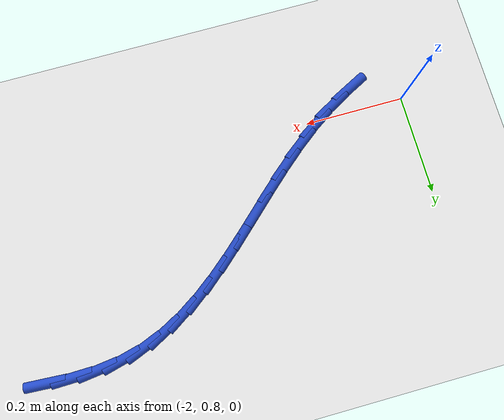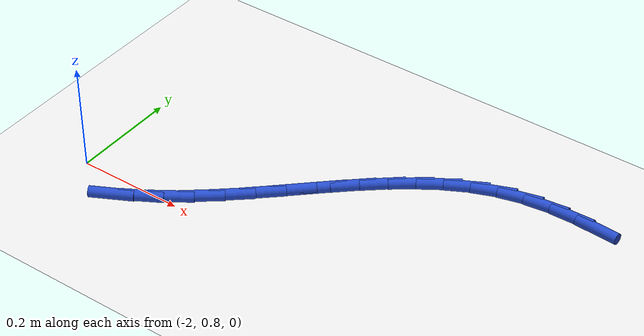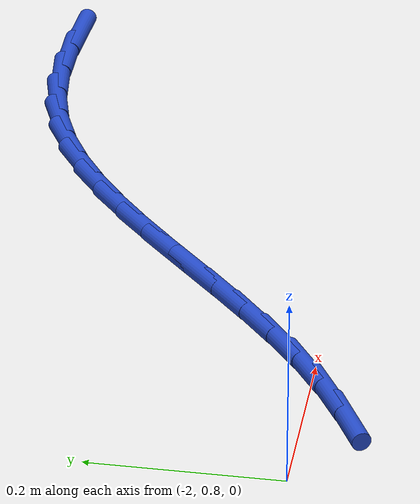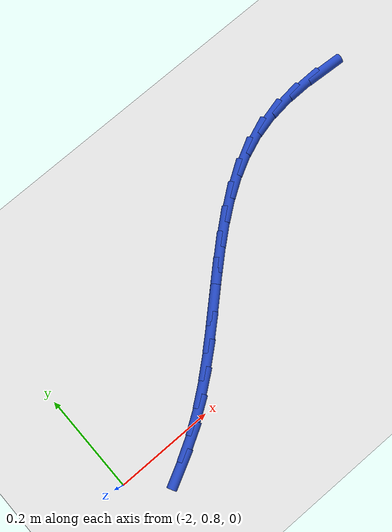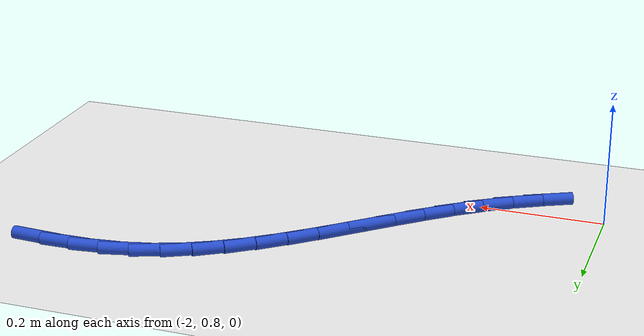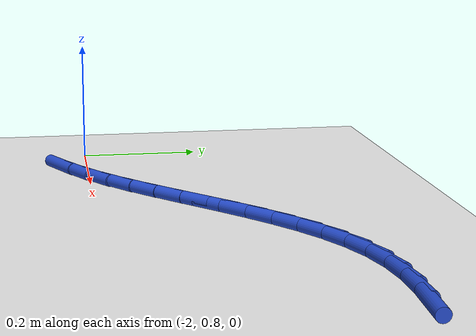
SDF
<sdf version="1.6">
 <world name="default">
  <model name="ground_plane">
   <static>1</static>
   <link name="link">
    <collision name="collision">
     <geometry><plane><normal>0 0 1</normal><size>100 100</size></plane></geometry>
     <surface><friction><ode><mu>100</mu><mu2>50</mu2></ode></friction></surface>
    </collision>
    <visual name="visual">
     <cast_shadows>0</cast_shadows>
     <geometry><plane><normal>0 0 1</normal><size>100 100</size></plane></geometry>
     <material>
      <script><uri>file://media/materials/scripts/gazebo.material</uri><name>Gazebo/WhiteGlow</name></script>
     </material>
    </visual>
   </link>
  </model>
  <model name="line">
   <link name="link_36">
    <pose>-1.1842214919961074 1.1567132328746879 0.01 0 1.57 -0.059295734067460776</pose>
    <collision name="collision">
     <geometry><cylinder><radius>0.01</radius><length>0.08</length></cylinder></geometry>
    </collision>
    <visual name="visual">
     <material>
      <script><name>Gazebo/Blue</name><uri>file://media/materials/scripts/gazebo.material</uri></script>
     </material>
     <geometry><cylinder><radius>0.01</radius><length>0.08</length></cylinder></geometry>
    </visual>
   </link>
   <link name="link_37">
    <pose>-1.234682293336803 1.1597088548080403 0.01 0 1.57 0.020981726617493562</pose>
    <collision name="collision">
     <geometry><cylinder><radius>0.01</radius><length>0.08</length></cylinder></geometry>
    </collision>
    <visual name="visual">
     <material>
      <script><name>Gazebo/Blue</name><uri>file://media/materials/scripts/gazebo.material</uri></script>
     </material>
     <geometry><cylinder><radius>0.01</radius><length>0.08</length></cylinder></geometry>
    </visual>
   </link>
   <link name="link_38">
    <pose>-1.2840662553750672 1.1586725419398116 0.01 0 1.57 0.12251111647595986</pose>
    <collision name="collision">
     <geometry><cylinder><radius>0.01</radius><length>0.08</length></cylinder></geometry>
    </collision>
    <visual name="visual">
     <material>
      <script><name>Gazebo/Blue</name><uri>file://media/materials/scripts/gazebo.material</uri></script>
     </material>
     <geometry><cylinder><radius>0.01</radius><length>0.08</length></cylinder></geometry>
    </visual>
   </link>
   <link name="link_39">
    <pose>-1.3318810711704174 1.1527852116970432 0.01 0 1.57 0.24687481921970103</pose>
    <collision name="collision">
     <geometry><cylinder><radius>0.01</radius><length>0.08</length></cylinder></geometry>
    </collision>
    <visual name="visual">
     <material>
      <script><name>Gazebo/Blue</name><uri>file://media/materials/scripts/gazebo.material</uri></script>
     </material>
     <geometry><cylinder><radius>0.01</radius><length>0.08</length></cylinder></geometry>
    </visual>
   </link>
   <link name="link_40">
    <pose>-1.3776468200733747 1.1412515279409419 0.01 0 1.57 0.37683864485815727</pose>
    <collision name="collision">
     <geometry><cylinder><radius>0.01</radius><length>0.08</length></cylinder></geometry>
    </collision>
    <visual name="visual">
     <material>
      <script><name>Gazebo/Blue</name><uri>file://media/materials/scripts/gazebo.material</uri></script>
     </material>
     <geometry><cylinder><radius>0.01</radius><length>0.08</length></cylinder></geometry>
    </visual>
   </link>
   <link name="link_41">
    <pose>-1.4212572904974448 1.1239926125633306 0.01 0 1.57 0.48910395518948574</pose>
    <collision name="collision">
     <geometry><cylinder><radius>0.01</radius><length>0.08</length></cylinder></geometry>
    </collision>
    <visual name="visual">
     <material>
      <script><name>Gazebo/Blue</name><uri>file://media/materials/scripts/gazebo.material</uri></script>
     </material>
     <geometry><cylinder><radius>0.01</radius><length>0.08</length></cylinder></geometry>
    </visual>
   </link>
   <link name="link_42">
    <pose>-1.4630372095517772 1.101755763537329 0.01 0 1.57 0.5803415601344453</pose>
    <collision name="collision">
     <geometry><cylinder><radius>0.01</radius><length>0.08</length></cylinder></geometry>
    </collision>
    <visual name="visual">
     <material>
      <script><name>Gazebo/Blue</name><uri>file://media/materials/scripts/gazebo.material</uri></script>
     </material>
     <geometry><cylinder><radius>0.01</radius><length>0.08</length></cylinder></geometry>
    </visual>
   </link>
   <link name="link_43">
    <pose>-1.5033352094601888 1.0753341086354113 0.01 0 1.57 0.650649305920409</pose>
    <collision name="collision">
     <geometry><cylinder><radius>0.01</radius><length>0.08</length></cylinder></geometry>
    </collision>
    <visual name="visual">
     <material>
      <script><name>Gazebo/Blue</name><uri>file://media/materials/scripts/gazebo.material</uri></script>
     </material>
     <geometry><cylinder><radius>0.01</radius><length>0.08</length></cylinder></geometry>
    </visual>
   </link>
   <link name="link_44">
    <pose>-1.542499922446493 1.0455207756300502 0.01 0 1.57 0.7012911979180595</pose>
    <collision name="collision">
     <geometry><cylinder><radius>0.01</radius><length>0.08</length></cylinder></geometry>
    </collision>
    <visual name="visual">
     <material>
      <script><name>Gazebo/Blue</name><uri>file://media/materials/scripts/gazebo.material</uri></script>
     </material>
     <geometry><cylinder><radius>0.01</radius><length>0.08</length></cylinder></geometry>
    </visual>
   </link>
   <link name="link_45">
    <pose>-1.5808799807345038 1.0131088922937184 0.01 0 1.57 0.7337995944201634</pose>
    <collision name="collision">
     <geometry><cylinder><radius>0.01</radius><length>0.08</length></cylinder></geometry>
    </collision>
    <visual name="visual">
     <material>
      <script><name>Gazebo/Blue</name><uri>file://media/materials/scripts/gazebo.material</uri></script>
     </material>
     <geometry><cylinder><radius>0.01</radius><length>0.08</length></cylinder></geometry>
    </visual>
   </link>
   <link name="link_46">
    <pose>-1.6188240165480363 0.9788915863988884 0.01 0 1.57 0.7494691820974768</pose>
    <collision name="collision">
     <geometry><cylinder><radius>0.01</radius><length>0.08</length></cylinder></geometry>
    </collision>
    <visual name="visual">
     <material>
      <script><name>Gazebo/Blue</name><uri>file://media/materials/scripts/gazebo.material</uri></script>
     </material>
     <geometry><cylinder><radius>0.01</radius><length>0.08</length></cylinder></geometry>
    </visual>
   </link>
   <link name="link_47">
    <pose>-1.6566806621109031 0.943661985718034 0.01 0 1.57 0.7491324179359471</pose>
    <collision name="collision">
     <geometry><cylinder><radius>0.01</radius><length>0.08</length></cylinder></geometry>
    </collision>
    <visual name="visual">
     <material>
      <script><name>Gazebo/Blue</name><uri>file://media/materials/scripts/gazebo.material</uri></script>
     </material>
     <geometry><cylinder><radius>0.01</radius><length>0.08</length></cylinder></geometry>
    </visual>
   </link>
   <link name="link_48">
    <pose>-1.6947985496469204 0.9082132180236276 0.01 0 1.57 0.7330977995031656</pose>
    <collision name="collision">
     <geometry><cylinder><radius>0.01</radius><length>0.08</length></cylinder></geometry>
    </collision>
    <visual name="visual">
     <material>
      <script><name>Gazebo/Blue</name><uri>file://media/materials/scripts/gazebo.material</uri></script>
     </material>
     <geometry><cylinder><radius>0.01</radius><length>0.08</length></cylinder></geometry>
    </visual>
   </link>
   <link name="link_49">
    <pose>-1.7335263113799018 0.8733384110881426 0.01 0 1.57 0.7011844575428977</pose>
    <collision name="collision">
     <geometry><cylinder><radius>0.01</radius><length>0.08</length></cylinder></geometry>
    </collision>
    <visual name="visual">
     <material>
      <script><name>Gazebo/Blue</name><uri>file://media/materials/scripts/gazebo.material</uri></script>
     </material>
     <geometry><cylinder><radius>0.01</radius><length>0.08</length></cylinder></geometry>
    </visual>
   </link>
   <link name="link_50">
    <pose>-1.7732125795336606 0.8398306926840513 0.01 0 1.57 0.6528405167930271</pose>
    <collision name="collision">
     <geometry><cylinder><radius>0.01</radius><length>0.08</length></cylinder></geometry>
    </collision>
    <visual name="visual">
     <material>
      <script><name>Gazebo/Blue</name><uri>file://media/materials/scripts/gazebo.material</uri></script>
     </material>
     <geometry><cylinder><radius>0.01</radius><length>0.08</length></cylinder></geometry>
    </visual>
   </link>
   <link name="link_51">
    <pose>-1.814205986332012 0.8084831905838271 0.01 0 1.57 0.5874332893839208</pose>
    <collision name="collision">
     <geometry><cylinder><radius>0.01</radius><length>0.08</length></cylinder></geometry>
    </collision>
    <visual name="visual">
     <material>
      <script><name>Gazebo/Blue</name><uri>file://media/materials/scripts/gazebo.material</uri></script>
     </material>
     <geometry><cylinder><radius>0.01</radius><length>0.08</length></cylinder></geometry>
    </visual>
   </link>
   <link name="link_52">
    <pose>-1.856853651818118 0.7800864712865497 0.01 0 1.57 0.5179578473718071</pose>
    <collision name="collision">
     <geometry><cylinder><radius>0.01</radius><length>0.08</length></cylinder></geometry>
    </collision>
    <visual name="visual">
     <material>
      <script><name>Gazebo/Blue</name><uri>file://media/materials/scripts/gazebo.material</uri></script>
     </material>
     <geometry><cylinder><radius>0.01</radius><length>0.08</length></cylinder></geometry>
    </visual>
   </link>
   <link name="link_53">
    <pose>-1.9011545633953706 0.7548414476240647 0.01 0 1.57 0.47510370564622567</pose>
    <collision name="collision">
     <geometry><cylinder><radius>0.01</radius><length>0.08</length></cylinder></geometry>
    </collision>
    <visual name="visual">
     <material>
      <script><name>Gazebo/Blue</name><uri>file://media/materials/scripts/gazebo.material</uri></script>
     </material>
     <geometry><cylinder><radius>0.01</radius><length>0.08</length></cylinder></geometry>
    </visual>
   </link>
  </model>
 </world>
</sdf>
